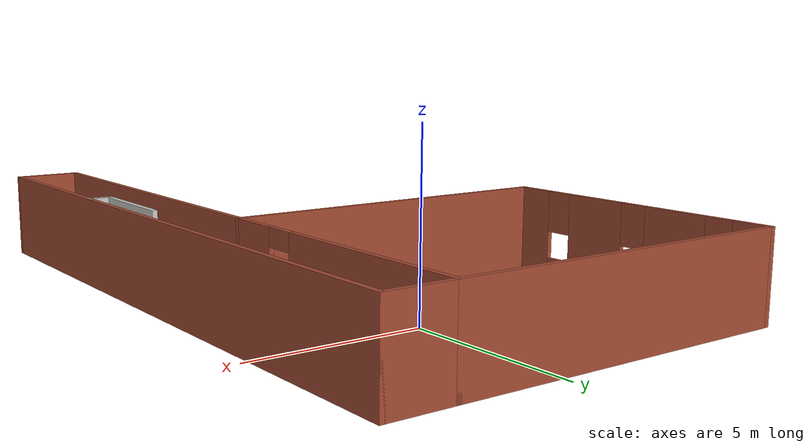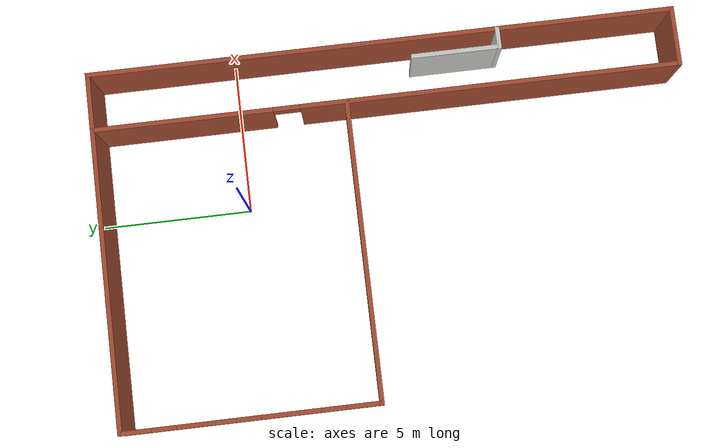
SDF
<?xml version='1.0'?>
<sdf version='1.6'>
  <model name='School'>
    <pose frame=''>-1.11968 -4.98553 0 0 -0 0</pose>
    <link name='Wall_1'>
      <collision name='Wall_1_Collision'>
        <geometry>
          <box>
            <size>10 0.15 2.5</size>
          </box>
        </geometry>
        <pose frame=''>0 0 1.25 0 -0 0</pose>
      </collision>
      <visual name='Wall_1_Visual'>
        <pose frame=''>0 0 1.25 0 -0 0</pose>
        <geometry>
          <box>
            <size>10 0.15 2.5</size>
          </box>
        </geometry>
        <material>
          <script>
            <uri>file://media/materials/scripts/gazebo.material</uri>
            <name>Gazebo/Bricks</name>
          </script>
          <ambient>1 1 1 1</ambient>
        </material>
        <meta>
          <layer>0</layer>
        </meta>
      </visual>
      <pose frame=''>-0.925 1.325 0 0 -0 3.14159</pose>
    </link>
    <link name='Wall_11'>
      <collision name='Wall_11_Collision'>
        <geometry>
          <box>
            <size>0.75 0.15 2.5</size>
          </box>
        </geometry>
        <pose frame=''>0 0 1.25 0 -0 0</pose>
      </collision>
      <visual name='Wall_11_Visual'>
        <pose frame=''>0 0 1.25 0 -0 0</pose>
        <geometry>
          <box>
            <size>0.75 0.15 2.5</size>
          </box>
        </geometry>
        <material>
          <script>
            <uri>file://media/materials/scripts/gazebo.material</uri>
            <name>Gazebo/CeilingTiled</name>
          </script>
          <ambient>1 1 1 1</ambient>
        </material>
        <meta>
          <layer>0</layer>
        </meta>
      </visual>
      <pose frame=''>5.54408 -3.87039 0 0 -0 3.14159</pose>
    </link>
    <link name='Wall_12'>
      <collision name='Wall_12_Collision'>
        <geometry>
          <box>
            <size>3 0.15 2.5</size>
          </box>
        </geometry>
        <pose frame=''>0 0 1.25 0 -0 0</pose>
      </collision>
      <visual name='Wall_12_Visual'>
        <pose frame=''>0 0 1.25 0 -0 0</pose>
        <geometry>
          <box>
            <size>3 0.15 2.5</size>
          </box>
        </geometry>
        <material>
          <script>
            <uri>file://media/materials/scripts/gazebo.material</uri>
            <name>Gazebo/CeilingTiled</name>
          </script>
          <ambient>1 1 1 1</ambient>
        </material>
        <meta>
          <layer>0</layer>
        </meta>
      </visual>
      <pose frame=''>5.24408 -2.44539 0 0 -0 1.5708</pose>
    </link>
    <link name='Wall_2'>
      <pose frame=''>-5.85 5.5 0 0 -0 1.5708</pose>
      <visual name='Wall_2_Visual_0'>
        <pose frame=''>-3.64827 0 1.25 0 -0 0</pose>
        <geometry>
          <box>
            <size>1.20347 0.15 2.5</size>
          </box>
        </geometry>
        <material>
          <script>
            <uri>file://media/materials/scripts/gazebo.material</uri>
            <name>Gazebo/Bricks</name>
          </script>
          <ambient>1 1 1 1</ambient>
        </material>
        <meta>
          <layer>0</layer>
        </meta>
      </visual>
      <collision name='Wall_2_Collision_0'>
        <geometry>
          <box>
            <size>1.20347 0.15 2.5</size>
          </box>
        </geometry>
        <pose frame=''>-3.64827 0 1.25 0 -0 0</pose>
      </collision>
      <visual name='Wall_2_Visual_1'>
        <pose frame=''>0.601733 0 0.25 0 -0 0</pose>
        <geometry>
          <box>
            <size>7.29654 0.15 0.5</size>
          </box>
        </geometry>
        <material>
          <script>
            <uri>file://media/materials/scripts/gazebo.material</uri>
            <name>Gazebo/Bricks</name>
          </script>
          <ambient>1 1 1 1</ambient>
        </material>
        <meta>
          <layer>0</layer>
        </meta>
      </visual>
      <collision name='Wall_2_Collision_1'>
        <geometry>
          <box>
            <size>7.29654 0.15 0.5</size>
          </box>
        </geometry>
        <pose frame=''>0.601733 0 0.25 0 -0 0</pose>
      </collision>
      <visual name='Wall_2_Visual_2'>
        <pose frame=''>-1.29078 0 1.5 0 -0 0</pose>
        <geometry>
          <box>
            <size>1.91151 0.15 2</size>
          </box>
        </geometry>
        <material>
          <script>
            <uri>file://media/materials/scripts/gazebo.material</uri>
            <name>Gazebo/Bricks</name>
          </script>
          <ambient>1 1 1 1</ambient>
        </material>
        <meta>
          <layer>0</layer>
        </meta>
      </visual>
      <collision name='Wall_2_Collision_2'>
        <geometry>
          <box>
            <size>1.91151 0.15 2</size>
          </box>
        </geometry>
        <pose frame=''>-1.29078 0 1.5 0 -0 0</pose>
      </collision>
      <visual name='Wall_2_Visual_3'>
        <pose frame=''>1.41975 0 1.5 0 -0 0</pose>
        <geometry>
          <box>
            <size>1.90953 0.15 2</size>
          </box>
        </geometry>
        <material>
          <script>
            <uri>file://media/materials/scripts/gazebo.material</uri>
            <name>Gazebo/Bricks</name>
          </script>
          <ambient>1 1 1 1</ambient>
        </material>
        <meta>
          <layer>0</layer>
        </meta>
      </visual>
      <collision name='Wall_2_Collision_3'>
        <geometry>
          <box>
            <size>1.90953 0.15 2</size>
          </box>
        </geometry>
        <pose frame=''>1.41975 0 1.5 0 -0 0</pose>
      </collision>
      <visual name='Wall_2_Visual_4'>
        <pose frame=''>3.71226 0 1.5 0 -0 0</pose>
        <geometry>
          <box>
            <size>1.07549 0.15 2</size>
          </box>
        </geometry>
        <material>
          <script>
            <uri>file://media/materials/scripts/gazebo.material</uri>
            <name>Gazebo/Bricks</name>
          </script>
          <ambient>1 1 1 1</ambient>
        </material>
        <meta>
          <layer>0</layer>
        </meta>
      </visual>
      <collision name='Wall_2_Collision_4'>
        <geometry>
          <box>
            <size>1.07549 0.15 2</size>
          </box>
        </geometry>
        <pose frame=''>3.71226 0 1.5 0 -0 0</pose>
      </collision>
      <visual name='Wall_2_Visual_5'>
        <pose frame=''>-2.64654 0 1.9 0 -0 0</pose>
        <geometry>
          <box>
            <size>0.8 0.15 1.2</size>
          </box>
        </geometry>
        <material>
          <script>
            <uri>file://media/materials/scripts/gazebo.material</uri>
            <name>Gazebo/Bricks</name>
          </script>
          <ambient>1 1 1 1</ambient>
        </material>
        <meta>
          <layer>0</layer>
        </meta>
      </visual>
      <collision name='Wall_2_Collision_5'>
        <geometry>
          <box>
            <size>0.8 0.15 1.2</size>
          </box>
        </geometry>
        <pose frame=''>-2.64654 0 1.9 0 -0 0</pose>
      </collision>
      <visual name='Wall_2_Visual_6'>
        <pose frame=''>0.064977 0 1.9 0 -0 0</pose>
        <geometry>
          <box>
            <size>0.8 0.15 1.2</size>
          </box>
        </geometry>
        <material>
          <script>
            <uri>file://media/materials/scripts/gazebo.material</uri>
            <name>Gazebo/Bricks</name>
          </script>
          <ambient>1 1 1 1</ambient>
        </material>
        <meta>
          <layer>0</layer>
        </meta>
      </visual>
      <collision name='Wall_2_Collision_6'>
        <geometry>
          <box>
            <size>0.8 0.15 1.2</size>
          </box>
        </geometry>
        <pose frame=''>0.064977 0 1.9 0 -0 0</pose>
      </collision>
      <visual name='Wall_2_Visual_7'>
        <pose frame=''>2.77451 0 1.9 0 -0 0</pose>
        <geometry>
          <box>
            <size>0.8 0.15 1.2</size>
          </box>
        </geometry>
        <material>
          <script>
            <uri>file://media/materials/scripts/gazebo.material</uri>
            <name>Gazebo/Bricks</name>
          </script>
          <ambient>1 1 1 1</ambient>
        </material>
        <meta>
          <layer>0</layer>
        </meta>
      </visual>
      <collision name='Wall_2_Collision_7'>
        <geometry>
          <box>
            <size>0.8 0.15 1.2</size>
          </box>
        </geometry>
        <pose frame=''>2.77451 0 1.9 0 -0 0</pose>
      </collision>
    </link>
    <link name='Wall_3'>
      <collision name='Wall_3_Collision'>
        <geometry>
          <box>
            <size>10 0.15 2.5</size>
          </box>
        </geometry>
        <pose frame=''>0 0 1.25 0 -0 0</pose>
      </collision>
      <visual name='Wall_3_Visual'>
        <pose frame=''>0 0 1.25 0 -0 0</pose>
        <geometry>
          <box>
            <size>10 0.15 2.5</size>
          </box>
        </geometry>
        <material>
          <script>
            <uri>file://media/materials/scripts/gazebo.material</uri>
            <name>Gazebo/Bricks</name>
          </script>
          <ambient>1 1 1 1</ambient>
        </material>
        <meta>
          <layer>0</layer>
        </meta>
      </visual>
      <pose frame=''>-0.925 9.675 0 0 -0 0</pose>
    </link>
    <link name='Wall_4'>
      <pose frame=''>4 5.5 0 0 0 -1.5708</pose>
      <visual name='Wall_4_Visual_0'>
        <pose frame=''>-1.25331 0 1.25 0 -0 0</pose>
        <geometry>
          <box>
            <size>5.99337 0.15 2.5</size>
          </box>
        </geometry>
        <material>
          <script>
            <uri>file://media/materials/scripts/gazebo.material</uri>
            <name>Gazebo/Bricks</name>
          </script>
          <ambient>1 1 1 1</ambient>
        </material>
        <meta>
          <layer>0</layer>
        </meta>
      </visual>
      <collision name='Wall_4_Collision_0'>
        <geometry>
          <box>
            <size>5.99337 0.15 2.5</size>
          </box>
        </geometry>
        <pose frame=''>-1.25331 0 1.25 0 -0 0</pose>
      </collision>
      <visual name='Wall_4_Visual_1'>
        <pose frame=''>3.44668 0 1.25 0 -0 0</pose>
        <geometry>
          <box>
            <size>1.60663 0.15 2.5</size>
          </box>
        </geometry>
        <material>
          <script>
            <uri>file://media/materials/scripts/gazebo.material</uri>
            <name>Gazebo/Bricks</name>
          </script>
          <ambient>1 1 1 1</ambient>
        </material>
        <meta>
          <layer>0</layer>
        </meta>
      </visual>
      <collision name='Wall_4_Collision_1'>
        <geometry>
          <box>
            <size>1.60663 0.15 2.5</size>
          </box>
        </geometry>
        <pose frame=''>3.44668 0 1.25 0 -0 0</pose>
      </collision>
      <visual name='Wall_4_Visual_2'>
        <pose frame=''>2.19337 0 2.25 0 -0 0</pose>
        <geometry>
          <box>
            <size>0.9 0.15 0.5</size>
          </box>
        </geometry>
        <material>
          <script>
            <uri>file://media/materials/scripts/gazebo.material</uri>
            <name>Gazebo/Bricks</name>
          </script>
          <ambient>1 1 1 1</ambient>
        </material>
        <meta>
          <layer>0</layer>
        </meta>
      </visual>
      <collision name='Wall_4_Collision_2'>
        <geometry>
          <box>
            <size>0.9 0.15 0.5</size>
          </box>
        </geometry>
        <pose frame=''>2.19337 0 2.25 0 -0 0</pose>
      </collision>
    </link>
    <link name='Wall_6'>
      <collision name='Wall_6_Collision'>
        <geometry>
          <box>
            <size>2 0.15 2.5</size>
          </box>
        </geometry>
        <pose frame=''>0 0 1.25 0 -0 0</pose>
      </collision>
      <visual name='Wall_6_Visual'>
        <pose frame=''>0 0 1.25 0 -0 0</pose>
        <geometry>
          <box>
            <size>2 0.15 2.5</size>
          </box>
        </geometry>
        <material>
          <script>
            <uri>file://media/materials/scripts/gazebo.material</uri>
            <name>Gazebo/Bricks</name>
          </script>
          <ambient>1 1 1 1</ambient>
        </material>
        <meta>
          <layer>0</layer>
        </meta>
      </visual>
      <pose frame=''>4.925 9.675 0 0 -0 0</pose>
    </link>
    <link name='Wall_7'>
      <collision name='Wall_7_Collision'>
        <geometry>
          <box>
            <size>19.5 0.15 2.5</size>
          </box>
        </geometry>
        <pose frame=''>0 0 1.25 0 -0 0</pose>
      </collision>
      <visual name='Wall_7_Visual'>
        <pose frame=''>0 0 1.25 0 -0 0</pose>
        <geometry>
          <box>
            <size>19.5 0.15 2.5</size>
          </box>
        </geometry>
        <material>
          <script>
            <uri>file://media/materials/scripts/gazebo.material</uri>
            <name>Gazebo/Bricks</name>
          </script>
          <ambient>1 1 1 1</ambient>
        </material>
        <meta>
          <layer>0</layer>
        </meta>
      </visual>
      <pose frame=''>5.85 0 0 0 0 -1.5708</pose>
    </link>
    <link name='Wall_8'>
      <collision name='Wall_8_Collision'>
        <geometry>
          <box>
            <size>2 0.15 2.5</size>
          </box>
        </geometry>
        <pose frame=''>0 0 1.25 0 -0 0</pose>
      </collision>
      <visual name='Wall_8_Visual'>
        <pose frame=''>0 0 1.25 0 -0 0</pose>
        <geometry>
          <box>
            <size>2 0.15 2.5</size>
          </box>
        </geometry>
        <material>
          <script>
            <uri>file://media/materials/scripts/gazebo.material</uri>
            <name>Gazebo/Bricks</name>
          </script>
          <ambient>1 1 1 1</ambient>
        </material>
        <meta>
          <layer>0</layer>
        </meta>
      </visual>
      <pose frame=''>4.925 -9.675 0 0 -0 3.14159</pose>
    </link>
    <link name='Wall_9'>
      <collision name='Wall_9_Collision'>
        <geometry>
          <box>
            <size>11 0.15 2.5</size>
          </box>
        </geometry>
        <pose frame=''>0 0 1.25 0 -0 0</pose>
      </collision>
      <visual name='Wall_9_Visual'>
        <pose frame=''>0 0 1.25 0 -0 0</pose>
        <geometry>
          <box>
            <size>11 0.15 2.5</size>
          </box>
        </geometry>
        <material>
          <script>
            <uri>file://media/materials/scripts/gazebo.material</uri>
            <name>Gazebo/Bricks</name>
          </script>
          <ambient>1 1 1 1</ambient>
        </material>
        <meta>
          <layer>0</layer>
        </meta>
      </visual>
      <pose frame=''>4 -4.25 0 0 -0 1.5708</pose>
    </link>
    <static>1</static>
  </model>
</sdf>
